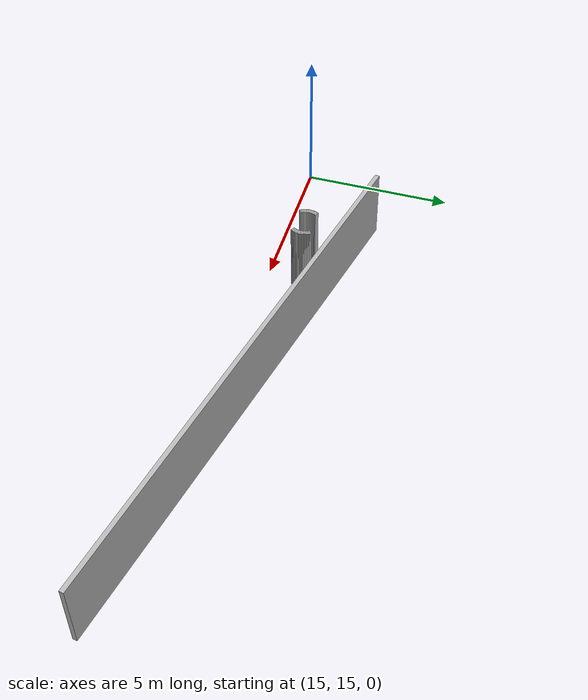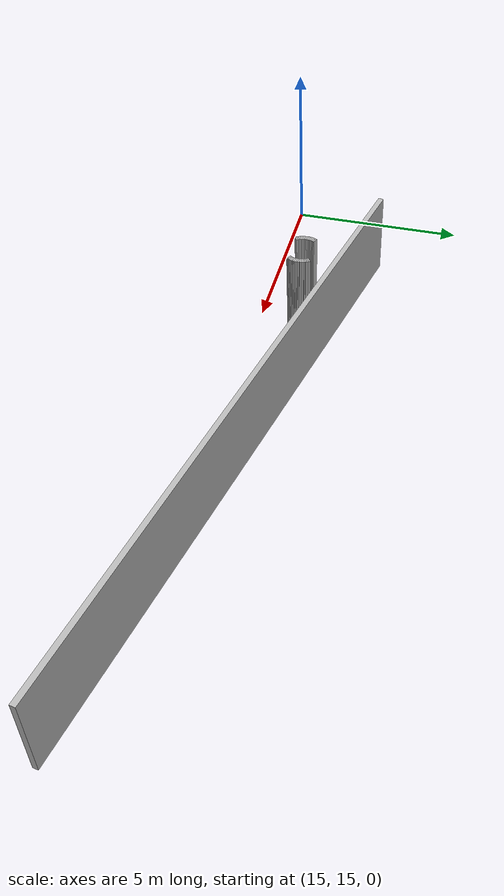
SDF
<sdf version="1.6">
 <model name="sps_2504">
  <static>1</static>
  <allow_auto_disable>0</allow_auto_disable>
  <link name="Wall631">
   <collision name="collision"><geometry><box><size>17.8427 0.15 2.5</size></box></geometry></collision>
   <visual name="visual">
    <geometry><box><size>17.8427 0.15 2.5</size></box></geometry>
    <transparency>0.0</transparency>
   </visual>
   <pose>25.752 15.9963 1.25 0 0 -0.21425</pose>
  </link>
  <link name="Wall1907">
   <collision name="collision"><geometry><box><size>0.0452906 0.15 2.5</size></box></geometry></collision>
   <visual name="visual">
    <geometry><box><size>0.0452906 0.15 2.5</size></box></geometry>
    <transparency>0.0</transparency>
   </visual>
   <pose>20.3206 16.4732 1.25 0 0 -1.00148</pose>
  </link>
  <link name="Wall1908">
   <collision name="collision"><geometry><box><size>0.0453724 0.15 2.5</size></box></geometry></collision>
   <visual name="visual">
    <geometry><box><size>0.0453724 0.15 2.5</size></box></geometry>
    <transparency>0.0</transparency>
   </visual>
   <pose>20.3433 16.434 1.25 0 0 -1.0897</pose>
  </link>
  <link name="Wall1909">
   <collision name="collision"><geometry><box><size>0.0454525 0.15 2.5</size></box></geometry></collision>
   <visual name="visual">
    <geometry><box><size>0.0454525 0.15 2.5</size></box></geometry>
    <transparency>0.0</transparency>
   </visual>
   <pose>20.3625 16.3929 1.25 0 0 -1.17807</pose>
  </link>
  <link name="Wall1910">
   <collision name="collision"><geometry><box><size>0.0453057 0.15 2.5</size></box></geometry></collision>
   <visual name="visual">
    <geometry><box><size>0.0453057 0.15 2.5</size></box></geometry>
    <transparency>0.0</transparency>
   </visual>
   <pose>20.378 16.3503 1.25 0 0 -1.26566</pose>
  </link>
  <link name="Wall1911">
   <collision name="collision"><geometry><box><size>0.0454476 0.15 2.5</size></box></geometry></collision>
   <visual name="visual">
    <geometry><box><size>0.0454476 0.15 2.5</size></box></geometry>
    <transparency>0.0</transparency>
   </visual>
   <pose>20.3898 16.3065 1.25 0 0 -1.35286</pose>
  </link>
  <link name="Wall1912">
   <collision name="collision"><geometry><box><size>0.0454156 0.15 2.5</size></box></geometry></collision>
   <visual name="visual">
    <geometry><box><size>0.0454156 0.15 2.5</size></box></geometry>
    <transparency>0.0</transparency>
   </visual>
   <pose>20.3976 16.2618 1.25 0 0 -1.44277</pose>
  </link>
  <link name="Wall1913">
   <collision name="collision"><geometry><box><size>0.0452082 0.15 2.5</size></box></geometry></collision>
   <visual name="visual">
    <geometry><box><size>0.0452082 0.15 2.5</size></box></geometry>
    <transparency>0.0</transparency>
   </visual>
   <pose>20.4015 16.2167 1.25 0 0 -1.52758</pose>
  </link>
  <link name="Wall1914">
   <collision name="collision"><geometry><box><size>0.0454521 0.15 2.5</size></box></geometry></collision>
   <visual name="visual">
    <geometry><box><size>0.0454521 0.15 2.5</size></box></geometry>
    <transparency>0.0</transparency>
   </visual>
   <pose>20.4015 16.1714 1.25 0 0 -1.61378</pose>
  </link>
  <link name="Wall1915">
   <collision name="collision"><geometry><box><size>0.0453869 0.15 2.5</size></box></geometry></collision>
   <visual name="visual">
    <geometry><box><size>0.0453869 0.15 2.5</size></box></geometry>
    <transparency>0.0</transparency>
   </visual>
   <pose>20.3975 16.1262 1.25 0 0 -1.70433</pose>
  </link>
  <link name="Wall1916">
   <collision name="collision"><geometry><box><size>0.0453153 0.15 2.5</size></box></geometry></collision>
   <visual name="visual">
    <geometry><box><size>0.0453153 0.15 2.5</size></box></geometry>
    <transparency>0.0</transparency>
   </visual>
   <pose>20.3895 16.0816 1.25 0 0 -1.788</pose>
  </link>
  <link name="Wall1917">
   <collision name="collision"><geometry><box><size>0.0454804 0.15 2.5</size></box></geometry></collision>
   <visual name="visual">
    <geometry><box><size>0.0454804 0.15 2.5</size></box></geometry>
    <transparency>0.0</transparency>
   </visual>
   <pose>20.3779 16.0378 1.25 0 0 -1.87472</pose>
  </link>
  <link name="Wall1918">
   <collision name="collision"><geometry><box><size>0.0452271 0.15 2.5</size></box></geometry></collision>
   <visual name="visual">
    <geometry><box><size>0.0452271 0.15 2.5</size></box></geometry>
    <transparency>0.0</transparency>
   </visual>
   <pose>20.3624 15.9952 1.25 0 0 -1.96559</pose>
  </link>
  <link name="Wall1919">
   <collision name="collision"><geometry><box><size>0.0453724 0.15 2.5</size></box></geometry></collision>
   <visual name="visual">
    <geometry><box><size>0.0453724 0.15 2.5</size></box></geometry>
    <transparency>0.0</transparency>
   </visual>
   <pose>20.3432 15.9542 1.25 0 0 -2.05189</pose>
  </link>
  <link name="Wall1920">
   <collision name="collision"><geometry><box><size>0.0452437 0.15 2.5</size></box></geometry></collision>
   <visual name="visual">
    <geometry><box><size>0.0452437 0.15 2.5</size></box></geometry>
    <transparency>0.0</transparency>
   </visual>
   <pose>20.3205 15.915 1.25 0 0 -2.13597</pose>
  </link>
  <link name="Wall1943">
   <collision name="collision"><geometry><box><size>0.045342 0.15 2.5</size></box></geometry></collision>
   <visual name="visual">
    <geometry><box><size>0.045342 0.15 2.5</size></box></geometry>
    <transparency>0.0</transparency>
   </visual>
   <pose>19.4442 15.9152 1.25 0 -0 2.13938</pose>
  </link>
  <link name="Wall1944">
   <collision name="collision"><geometry><box><size>0.0453724 0.15 2.5</size></box></geometry></collision>
   <visual name="visual">
    <geometry><box><size>0.0453724 0.15 2.5</size></box></geometry>
    <transparency>0.0</transparency>
   </visual>
   <pose>19.4215 15.9544 1.25 0 -0 2.05189</pose>
  </link>
  <link name="Wall1945">
   <collision name="collision"><geometry><box><size>0.0454525 0.15 2.5</size></box></geometry></collision>
   <visual name="visual">
    <geometry><box><size>0.0454525 0.15 2.5</size></box></geometry>
    <transparency>0.0</transparency>
   </visual>
   <pose>19.4023 15.9955 1.25 0 -0 1.96352</pose>
  </link>
  <link name="Wall1946">
   <collision name="collision"><geometry><box><size>0.0453057 0.15 2.5</size></box></geometry></collision>
   <visual name="visual">
    <geometry><box><size>0.0453057 0.15 2.5</size></box></geometry>
    <transparency>0.0</transparency>
   </visual>
   <pose>19.3868 16.0381 1.25 0 -0 1.87593</pose>
  </link>
  <link name="Wall1947">
   <collision name="collision"><geometry><box><size>0.0454345 0.15 2.5</size></box></geometry></collision>
   <visual name="visual">
    <geometry><box><size>0.0454345 0.15 2.5</size></box></geometry>
    <transparency>0.0</transparency>
   </visual>
   <pose>19.3751 16.0819 1.25 0 -0 1.78743</pose>
  </link>
  <link name="Wall1948">
   <collision name="collision"><geometry><box><size>0.0454156 0.15 2.5</size></box></geometry></collision>
   <visual name="visual">
    <geometry><box><size>0.0454156 0.15 2.5</size></box></geometry>
    <transparency>0.0</transparency>
   </visual>
   <pose>19.3674 16.1266 1.25 0 -0 1.69882</pose>
  </link>
  <link name="Wall1949">
   <collision name="collision"><geometry><box><size>0.0452109 0.15 2.5</size></box></geometry></collision>
   <visual name="visual">
    <geometry><box><size>0.0452109 0.15 2.5</size></box></geometry>
    <transparency>0.0</transparency>
   </visual>
   <pose>19.3635 16.1717 1.25 0 -0 1.61536</pose>
  </link>
  <link name="Wall1950">
   <collision name="collision"><geometry><box><size>0.0454548 0.15 2.5</size></box></geometry></collision>
   <visual name="visual">
    <geometry><box><size>0.0454548 0.15 2.5</size></box></geometry>
    <transparency>0.0</transparency>
   </visual>
   <pose>19.3635 16.217 1.25 0 -0 1.52647</pose>
  </link>
  <link name="Wall1951">
   <collision name="collision"><geometry><box><size>0.0453788 0.15 2.5</size></box></geometry></collision>
   <visual name="visual">
    <geometry><box><size>0.0453788 0.15 2.5</size></box></geometry>
    <transparency>0.0</transparency>
   </visual>
   <pose>19.3675 16.2622 1.25 0 -0 1.4386</pose>
  </link>
  <link name="Wall1952">
   <collision name="collision"><geometry><box><size>0.0452689 0.15 2.5</size></box></geometry></collision>
   <visual name="visual">
    <geometry><box><size>0.0452689 0.15 2.5</size></box></geometry>
    <transparency>0.0</transparency>
   </visual>
   <pose>19.3754 16.3068 1.25 0 -0 1.35198</pose>
  </link>
  <link name="Wall1953">
   <collision name="collision"><geometry><box><size>0.0454804 0.15 2.5</size></box></geometry></collision>
   <visual name="visual">
    <geometry><box><size>0.0454804 0.15 2.5</size></box></geometry>
    <transparency>0.0</transparency>
   </visual>
   <pose>19.3871 16.3506 1.25 0 -0 1.26687</pose>
  </link>
  <link name="Wall1954">
   <collision name="collision"><geometry><box><size>0.0452834 0.15 2.5</size></box></geometry></collision>
   <visual name="visual">
    <geometry><box><size>0.0452834 0.15 2.5</size></box></geometry>
    <transparency>0.0</transparency>
   </visual>
   <pose>19.4026 16.3932 1.25 0 -0 1.17652</pose>
  </link>
  <link name="Wall1955">
   <collision name="collision"><geometry><box><size>0.0453724 0.15 2.5</size></box></geometry></collision>
   <visual name="visual">
    <geometry><box><size>0.0453724 0.15 2.5</size></box></geometry>
    <transparency>0.0</transparency>
   </visual>
   <pose>19.4218 16.4342 1.25 0 -0 1.0897</pose>
  </link>
 </model>
</sdf>
